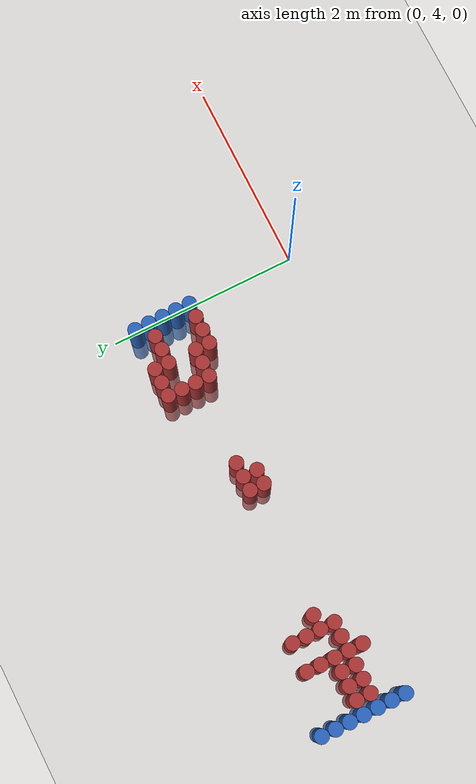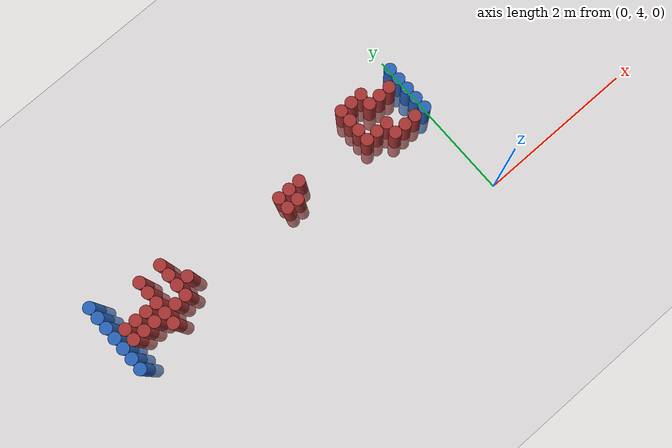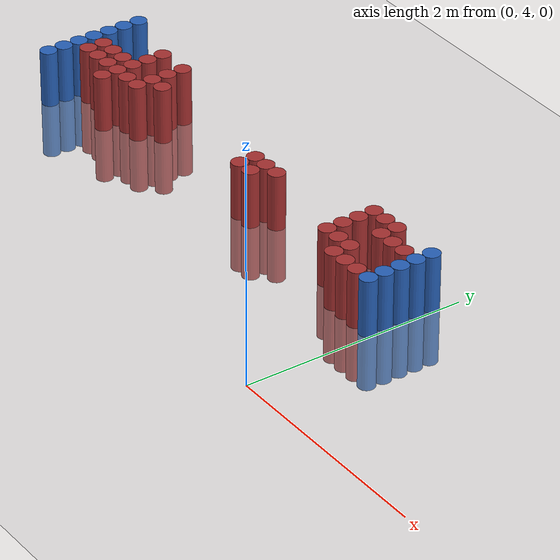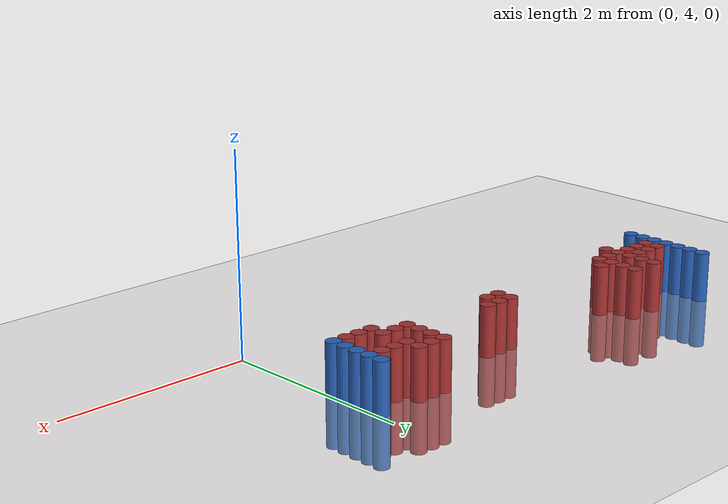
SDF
<sdf version="1.6">
 <world name="default">
  <model name="ground_plane">
   <static>1</static>
   <link name="link">
    <collision name="collision">
     <geometry><plane><normal>0 0 1</normal><size>100 100</size></plane></geometry>
     <surface><friction><ode><mu>100</mu><mu2>50</mu2></ode></friction></surface>
    </collision>
    <visual name="visual">
     <cast_shadows>0</cast_shadows>
     <geometry><plane><normal>0 0 1</normal><size>100 100</size></plane></geometry>
     <material>
      <script><uri>file://media/materials/scripts/gazebo.material</uri><name>Gazebo/Grey</name></script>
     </material>
    </visual>
   </link>
  </model>
  <model name="unit_cylinder_95">
   <static>1</static>
   <pose>-4.425000 5.025000 0.000000 0.000000 0.000000 0.000000</pose>
   <link name="link">
    <inertial>
     <mass>1</mass>
     <inertia><ixx>0.145833</ixx><ixy>0</ixy><ixz>0</ixz><iyy>0.145833</iyy><iyz>0</iyz><izz>0.125</izz></inertia>
    </inertial>
    <collision name="collision">
     <geometry><cylinder><radius>0.075000</radius><length>1</length></cylinder></geometry>
    </collision>
    <visual name="visual">
     <geometry><cylinder><radius>0.075000</radius><length>1</length></cylinder></geometry>
     <material>
      <ambient>0.152000 0.379000 0.720000 1</ambient>
      <diffuse>0.152000 0.379000 0.720000 1</diffuse>
     </material>
     <material>
      <script><name>Gazebo/Grey</name><uri>file://media/materials/scripts/gazebo.material</uri></script>
     </material>
    </visual>
   </link>
  </model>
  <model name="unit_cylinder_96">
   <static>1</static>
   <pose>-4.425000 5.175000 0.000000 0.000000 0.000000 0.000000</pose>
   <link name="link">
    <inertial>
     <mass>1</mass>
     <inertia><ixx>0.145833</ixx><ixy>0</ixy><ixz>0</ixz><iyy>0.145833</iyy><iyz>0</iyz><izz>0.125</izz></inertia>
    </inertial>
    <collision name="collision">
     <geometry><cylinder><radius>0.075000</radius><length>1</length></cylinder></geometry>
    </collision>
    <visual name="visual">
     <geometry><cylinder><radius>0.075000</radius><length>1</length></cylinder></geometry>
     <material>
      <ambient>0.152000 0.379000 0.720000 1</ambient>
      <diffuse>0.152000 0.379000 0.720000 1</diffuse>
     </material>
     <material>
      <script><name>Gazebo/Grey</name><uri>file://media/materials/scripts/gazebo.material</uri></script>
     </material>
    </visual>
   </link>
  </model>
  <model name="unit_cylinder_97">
   <static>1</static>
   <pose>-4.425000 5.325000 0.000000 0.000000 0.000000 0.000000</pose>
   <link name="link">
    <inertial>
     <mass>1</mass>
     <inertia><ixx>0.145833</ixx><ixy>0</ixy><ixz>0</ixz><iyy>0.145833</iyy><iyz>0</iyz><izz>0.125</izz></inertia>
    </inertial>
    <collision name="collision">
     <geometry><cylinder><radius>0.075000</radius><length>1</length></cylinder></geometry>
    </collision>
    <visual name="visual">
     <geometry><cylinder><radius>0.075000</radius><length>1</length></cylinder></geometry>
     <material>
      <ambient>0.152000 0.379000 0.720000 1</ambient>
      <diffuse>0.152000 0.379000 0.720000 1</diffuse>
     </material>
     <material>
      <script><name>Gazebo/Grey</name><uri>file://media/materials/scripts/gazebo.material</uri></script>
     </material>
    </visual>
   </link>
  </model>
  <model name="unit_cylinder_98">
   <static>1</static>
   <pose>-4.425000 5.475000 0.000000 0.000000 0.000000 0.000000</pose>
   <link name="link">
    <inertial>
     <mass>1</mass>
     <inertia><ixx>0.145833</ixx><ixy>0</ixy><ixz>0</ixz><iyy>0.145833</iyy><iyz>0</iyz><izz>0.125</izz></inertia>
    </inertial>
    <collision name="collision">
     <geometry><cylinder><radius>0.075000</radius><length>1</length></cylinder></geometry>
    </collision>
    <visual name="visual">
     <geometry><cylinder><radius>0.075000</radius><length>1</length></cylinder></geometry>
     <material>
      <ambient>0.152000 0.379000 0.720000 1</ambient>
      <diffuse>0.152000 0.379000 0.720000 1</diffuse>
     </material>
     <material>
      <script><name>Gazebo/Grey</name><uri>file://media/materials/scripts/gazebo.material</uri></script>
     </material>
    </visual>
   </link>
  </model>
  <model name="unit_cylinder_99">
   <static>1</static>
   <pose>-4.425000 5.625000 0.000000 0.000000 0.000000 0.000000</pose>
   <link name="link">
    <inertial>
     <mass>1</mass>
     <inertia><ixx>0.145833</ixx><ixy>0</ixy><ixz>0</ixz><iyy>0.145833</iyy><iyz>0</iyz><izz>0.125</izz></inertia>
    </inertial>
    <collision name="collision">
     <geometry><cylinder><radius>0.075000</radius><length>1</length></cylinder></geometry>
    </collision>
    <visual name="visual">
     <geometry><cylinder><radius>0.075000</radius><length>1</length></cylinder></geometry>
     <material>
      <ambient>0.152000 0.379000 0.720000 1</ambient>
      <diffuse>0.152000 0.379000 0.720000 1</diffuse>
     </material>
     <material>
      <script><name>Gazebo/Grey</name><uri>file://media/materials/scripts/gazebo.material</uri></script>
     </material>
    </visual>
   </link>
  </model>
  <model name="unit_cylinder_100">
   <static>1</static>
   <pose>-4.425000 5.775000 0.000000 0.000000 0.000000 0.000000</pose>
   <link name="link">
    <inertial>
     <mass>1</mass>
     <inertia><ixx>0.145833</ixx><ixy>0</ixy><ixz>0</ixz><iyy>0.145833</iyy><iyz>0</iyz><izz>0.125</izz></inertia>
    </inertial>
    <collision name="collision">
     <geometry><cylinder><radius>0.075000</radius><length>1</length></cylinder></geometry>
    </collision>
    <visual name="visual">
     <geometry><cylinder><radius>0.075000</radius><length>1</length></cylinder></geometry>
     <material>
      <ambient>0.152000 0.379000 0.720000 1</ambient>
      <diffuse>0.152000 0.379000 0.720000 1</diffuse>
     </material>
     <material>
      <script><name>Gazebo/Grey</name><uri>file://media/materials/scripts/gazebo.material</uri></script>
     </material>
    </visual>
   </link>
  </model>
  <model name="unit_cylinder_101">
   <static>1</static>
   <pose>-4.425000 5.925000 0.000000 0.000000 0.000000 0.000000</pose>
   <link name="link">
    <inertial>
     <mass>1</mass>
     <inertia><ixx>0.145833</ixx><ixy>0</ixy><ixz>0</ixz><iyy>0.145833</iyy><iyz>0</iyz><izz>0.125</izz></inertia>
    </inertial>
    <collision name="collision">
     <geometry><cylinder><radius>0.075000</radius><length>1</length></cylinder></geometry>
    </collision>
    <visual name="visual">
     <geometry><cylinder><radius>0.075000</radius><length>1</length></cylinder></geometry>
     <material>
      <ambient>0.152000 0.379000 0.720000 1</ambient>
      <diffuse>0.152000 0.379000 0.720000 1</diffuse>
     </material>
     <material>
      <script><name>Gazebo/Grey</name><uri>file://media/materials/scripts/gazebo.material</uri></script>
     </material>
    </visual>
   </link>
  </model>
  <model name="unit_cylinder_126">
   <static>1</static>
   <pose>-4.275000 5.325000 0.000000 0.000000 0.000000 0.000000</pose>
   <link name="link">
    <inertial>
     <mass>1</mass>
     <inertia><ixx>0.145833</ixx><ixy>0</ixy><ixz>0</ixz><iyy>0.145833</iyy><iyz>0</iyz><izz>0.125</izz></inertia>
    </inertial>
    <collision name="collision">
     <geometry><cylinder><radius>0.075000</radius><length>1</length></cylinder></geometry>
    </collision>
    <visual name="visual">
     <geometry><cylinder><radius>0.075000</radius><length>1</length></cylinder></geometry>
     <material>
      <ambient>0.648000 0.192000 0.192000 1</ambient>
      <diffuse>0.648000 0.192000 0.192000 1</diffuse>
     </material>
     <material>
      <script><name>Gazebo/Grey</name><uri>file://media/materials/scripts/gazebo.material</uri></script>
     </material>
    </visual>
   </link>
  </model>
  <model name="unit_cylinder_127">
   <static>1</static>
   <pose>-4.275000 5.475000 0.000000 0.000000 0.000000 0.000000</pose>
   <link name="link">
    <inertial>
     <mass>1</mass>
     <inertia><ixx>0.145833</ixx><ixy>0</ixy><ixz>0</ixz><iyy>0.145833</iyy><iyz>0</iyz><izz>0.125</izz></inertia>
    </inertial>
    <collision name="collision">
     <geometry><cylinder><radius>0.075000</radius><length>1</length></cylinder></geometry>
    </collision>
    <visual name="visual">
     <geometry><cylinder><radius>0.075000</radius><length>1</length></cylinder></geometry>
     <material>
      <ambient>0.648000 0.192000 0.192000 1</ambient>
      <diffuse>0.648000 0.192000 0.192000 1</diffuse>
     </material>
     <material>
      <script><name>Gazebo/Grey</name><uri>file://media/materials/scripts/gazebo.material</uri></script>
     </material>
    </visual>
   </link>
  </model>
  <model name="unit_cylinder_141">
   <static>1</static>
   <pose>-4.125000 5.325000 0.000000 0.000000 0.000000 0.000000</pose>
   <link name="link">
    <inertial>
     <mass>1</mass>
     <inertia><ixx>0.145833</ixx><ixy>0</ixy><ixz>0</ixz><iyy>0.145833</iyy><iyz>0</iyz><izz>0.125</izz></inertia>
    </inertial>
    <collision name="collision">
     <geometry><cylinder><radius>0.075000</radius><length>1</length></cylinder></geometry>
    </collision>
    <visual name="visual">
     <geometry><cylinder><radius>0.075000</radius><length>1</length></cylinder></geometry>
     <material>
      <ambient>0.648000 0.192000 0.192000 1</ambient>
      <diffuse>0.648000 0.192000 0.192000 1</diffuse>
     </material>
     <material>
      <script><name>Gazebo/Grey</name><uri>file://media/materials/scripts/gazebo.material</uri></script>
     </material>
    </visual>
   </link>
  </model>
  <model name="unit_cylinder_142">
   <static>1</static>
   <pose>-4.125000 5.475000 0.000000 0.000000 0.000000 0.000000</pose>
   <link name="link">
    <inertial>
     <mass>1</mass>
     <inertia><ixx>0.145833</ixx><ixy>0</ixy><ixz>0</ixz><iyy>0.145833</iyy><iyz>0</iyz><izz>0.125</izz></inertia>
    </inertial>
    <collision name="collision">
     <geometry><cylinder><radius>0.075000</radius><length>1</length></cylinder></geometry>
    </collision>
    <visual name="visual">
     <geometry><cylinder><radius>0.075000</radius><length>1</length></cylinder></geometry>
     <material>
      <ambient>0.648000 0.192000 0.192000 1</ambient>
      <diffuse>0.648000 0.192000 0.192000 1</diffuse>
     </material>
     <material>
      <script><name>Gazebo/Grey</name><uri>file://media/materials/scripts/gazebo.material</uri></script>
     </material>
    </visual>
   </link>
  </model>
  <model name="unit_cylinder_152">
   <static>1</static>
   <pose>-3.975000 5.325000 0.000000 0.000000 0.000000 0.000000</pose>
   <link name="link">
    <inertial>
     <mass>1</mass>
     <inertia><ixx>0.145833</ixx><ixy>0</ixy><ixz>0</ixz><iyy>0.145833</iyy><iyz>0</iyz><izz>0.125</izz></inertia>
    </inertial>
    <collision name="collision">
     <geometry><cylinder><radius>0.075000</radius><length>1</length></cylinder></geometry>
    </collision>
    <visual name="visual">
     <geometry><cylinder><radius>0.075000</radius><length>1</length></cylinder></geometry>
     <material>
      <ambient>0.648000 0.192000 0.192000 1</ambient>
      <diffuse>0.648000 0.192000 0.192000 1</diffuse>
     </material>
     <material>
      <script><name>Gazebo/Grey</name><uri>file://media/materials/scripts/gazebo.material</uri></script>
     </material>
    </visual>
   </link>
  </model>
  <model name="unit_cylinder_153">
   <static>1</static>
   <pose>-3.975000 5.475000 0.000000 0.000000 0.000000 0.000000</pose>
   <link name="link">
    <inertial>
     <mass>1</mass>
     <inertia><ixx>0.145833</ixx><ixy>0</ixy><ixz>0</ixz><iyy>0.145833</iyy><iyz>0</iyz><izz>0.125</izz></inertia>
    </inertial>
    <collision name="collision">
     <geometry><cylinder><radius>0.075000</radius><length>1</length></cylinder></geometry>
    </collision>
    <visual name="visual">
     <geometry><cylinder><radius>0.075000</radius><length>1</length></cylinder></geometry>
     <material>
      <ambient>0.648000 0.192000 0.192000 1</ambient>
      <diffuse>0.648000 0.192000 0.192000 1</diffuse>
     </material>
     <material>
      <script><name>Gazebo/Grey</name><uri>file://media/materials/scripts/gazebo.material</uri></script>
     </material>
    </visual>
   </link>
  </model>
  <model name="unit_cylinder_160">
   <static>1</static>
   <pose>-3.825000 5.175000 0.000000 0.000000 0.000000 0.000000</pose>
   <link name="link">
    <inertial>
     <mass>1</mass>
     <inertia><ixx>0.145833</ixx><ixy>0</ixy><ixz>0</ixz><iyy>0.145833</iyy><iyz>0</iyz><izz>0.125</izz></inertia>
    </inertial>
    <collision name="collision">
     <geometry><cylinder><radius>0.075000</radius><length>1</length></cylinder></geometry>
    </collision>
    <visual name="visual">
     <geometry><cylinder><radius>0.075000</radius><length>1</length></cylinder></geometry>
     <material>
      <ambient>0.648000 0.192000 0.192000 1</ambient>
      <diffuse>0.648000 0.192000 0.192000 1</diffuse>
     </material>
     <material>
      <script><name>Gazebo/Grey</name><uri>file://media/materials/scripts/gazebo.material</uri></script>
     </material>
    </visual>
   </link>
  </model>
  <model name="unit_cylinder_161">
   <static>1</static>
   <pose>-3.825000 5.325000 0.000000 0.000000 0.000000 0.000000</pose>
   <link name="link">
    <inertial>
     <mass>1</mass>
     <inertia><ixx>0.145833</ixx><ixy>0</ixy><ixz>0</ixz><iyy>0.145833</iyy><iyz>0</iyz><izz>0.125</izz></inertia>
    </inertial>
    <collision name="collision">
     <geometry><cylinder><radius>0.075000</radius><length>1</length></cylinder></geometry>
    </collision>
    <visual name="visual">
     <geometry><cylinder><radius>0.075000</radius><length>1</length></cylinder></geometry>
     <material>
      <ambient>0.648000 0.192000 0.192000 1</ambient>
      <diffuse>0.648000 0.192000 0.192000 1</diffuse>
     </material>
     <material>
      <script><name>Gazebo/Grey</name><uri>file://media/materials/scripts/gazebo.material</uri></script>
     </material>
    </visual>
   </link>
  </model>
  <model name="unit_cylinder_162">
   <static>1</static>
   <pose>-3.825000 5.475000 0.000000 0.000000 0.000000 0.000000</pose>
   <link name="link">
    <inertial>
     <mass>1</mass>
     <inertia><ixx>0.145833</ixx><ixy>0</ixy><ixz>0</ixz><iyy>0.145833</iyy><iyz>0</iyz><izz>0.125</izz></inertia>
    </inertial>
    <collision name="collision">
     <geometry><cylinder><radius>0.075000</radius><length>1</length></cylinder></geometry>
    </collision>
    <visual name="visual">
     <geometry><cylinder><radius>0.075000</radius><length>1</length></cylinder></geometry>
     <material>
      <ambient>0.648000 0.192000 0.192000 1</ambient>
      <diffuse>0.648000 0.192000 0.192000 1</diffuse>
     </material>
     <material>
      <script><name>Gazebo/Grey</name><uri>file://media/materials/scripts/gazebo.material</uri></script>
     </material>
    </visual>
   </link>
  </model>
  <model name="unit_cylinder_163">
   <static>1</static>
   <pose>-3.825000 5.625000 0.000000 0.000000 0.000000 0.000000</pose>
   <link name="link">
    <inertial>
     <mass>1</mass>
     <inertia><ixx>0.145833</ixx><ixy>0</ixy><ixz>0</ixz><iyy>0.145833</iyy><iyz>0</iyz><izz>0.125</izz></inertia>
    </inertial>
    <collision name="collision">
     <geometry><cylinder><radius>0.075000</radius><length>1</length></cylinder></geometry>
    </collision>
    <visual name="visual">
     <geometry><cylinder><radius>0.075000</radius><length>1</length></cylinder></geometry>
     <material>
      <ambient>0.648000 0.192000 0.192000 1</ambient>
      <diffuse>0.648000 0.192000 0.192000 1</diffuse>
     </material>
     <material>
      <script><name>Gazebo/Grey</name><uri>file://media/materials/scripts/gazebo.material</uri></script>
     </material>
    </visual>
   </link>
  </model>
  <model name="unit_cylinder_164">
   <static>1</static>
   <pose>-3.825000 5.775000 0.000000 0.000000 0.000000 0.000000</pose>
   <link name="link">
    <inertial>
     <mass>1</mass>
     <inertia><ixx>0.145833</ixx><ixy>0</ixy><ixz>0</ixz><iyy>0.145833</iyy><iyz>0</iyz><izz>0.125</izz></inertia>
    </inertial>
    <collision name="collision">
     <geometry><cylinder><radius>0.075000</radius><length>1</length></cylinder></geometry>
    </collision>
    <visual name="visual">
     <geometry><cylinder><radius>0.075000</radius><length>1</length></cylinder></geometry>
     <material>
      <ambient>0.648000 0.192000 0.192000 1</ambient>
      <diffuse>0.648000 0.192000 0.192000 1</diffuse>
     </material>
     <material>
      <script><name>Gazebo/Grey</name><uri>file://media/materials/scripts/gazebo.material</uri></script>
     </material>
    </visual>
   </link>
  </model>
  <model name="unit_cylinder_172">
   <static>1</static>
   <pose>-3.675000 5.325000 0.000000 0.000000 0.000000 0.000000</pose>
   <link name="link">
    <inertial>
     <mass>1</mass>
     <inertia><ixx>0.145833</ixx><ixy>0</ixy><ixz>0</ixz><iyy>0.145833</iyy><iyz>0</iyz><izz>0.125</izz></inertia>
    </inertial>
    <collision name="collision">
     <geometry><cylinder><radius>0.075000</radius><length>1</length></cylinder></geometry>
    </collision>
    <visual name="visual">
     <geometry><cylinder><radius>0.075000</radius><length>1</length></cylinder></geometry>
     <material>
      <ambient>0.648000 0.192000 0.192000 1</ambient>
      <diffuse>0.648000 0.192000 0.192000 1</diffuse>
     </material>
     <material>
      <script><name>Gazebo/Grey</name><uri>file://media/materials/scripts/gazebo.material</uri></script>
     </material>
    </visual>
   </link>
  </model>
  <model name="unit_cylinder_175">
   <static>1</static>
   <pose>-3.525000 5.325000 0.000000 0.000000 0.000000 0.000000</pose>
   <link name="link">
    <inertial>
     <mass>1</mass>
     <inertia><ixx>0.145833</ixx><ixy>0</ixy><ixz>0</ixz><iyy>0.145833</iyy><iyz>0</iyz><izz>0.125</izz></inertia>
    </inertial>
    <collision name="collision">
     <geometry><cylinder><radius>0.075000</radius><length>1</length></cylinder></geometry>
    </collision>
    <visual name="visual">
     <geometry><cylinder><radius>0.075000</radius><length>1</length></cylinder></geometry>
     <material>
      <ambient>0.648000 0.192000 0.192000 1</ambient>
      <diffuse>0.648000 0.192000 0.192000 1</diffuse>
     </material>
     <material>
      <script><name>Gazebo/Grey</name><uri>file://media/materials/scripts/gazebo.material</uri></script>
     </material>
    </visual>
   </link>
  </model>
  <model name="unit_cylinder_176">
   <static>1</static>
   <pose>-3.525000 5.475000 0.000000 0.000000 0.000000 0.000000</pose>
   <link name="link">
    <inertial>
     <mass>1</mass>
     <inertia><ixx>0.145833</ixx><ixy>0</ixy><ixz>0</ixz><iyy>0.145833</iyy><iyz>0</iyz><izz>0.125</izz></inertia>
    </inertial>
    <collision name="collision">
     <geometry><cylinder><radius>0.075000</radius><length>1</length></cylinder></geometry>
    </collision>
    <visual name="visual">
     <geometry><cylinder><radius>0.075000</radius><length>1</length></cylinder></geometry>
     <material>
      <ambient>0.648000 0.192000 0.192000 1</ambient>
      <diffuse>0.648000 0.192000 0.192000 1</diffuse>
     </material>
     <material>
      <script><name>Gazebo/Grey</name><uri>file://media/materials/scripts/gazebo.material</uri></script>
     </material>
    </visual>
   </link>
  </model>
  <model name="unit_cylinder_177">
   <static>1</static>
   <pose>-3.525000 5.625000 0.000000 0.000000 0.000000 0.000000</pose>
   <link name="link">
    <inertial>
     <mass>1</mass>
     <inertia><ixx>0.145833</ixx><ixy>0</ixy><ixz>0</ixz><iyy>0.145833</iyy><iyz>0</iyz><izz>0.125</izz></inertia>
    </inertial>
    <collision name="collision">
     <geometry><cylinder><radius>0.075000</radius><length>1</length></cylinder></geometry>
    </collision>
    <visual name="visual">
     <geometry><cylinder><radius>0.075000</radius><length>1</length></cylinder></geometry>
     <material>
      <ambient>0.648000 0.192000 0.192000 1</ambient>
      <diffuse>0.648000 0.192000 0.192000 1</diffuse>
     </material>
     <material>
      <script><name>Gazebo/Grey</name><uri>file://media/materials/scripts/gazebo.material</uri></script>
     </material>
    </visual>
   </link>
  </model>
  <model name="unit_cylinder_178">
   <static>1</static>
   <pose>-3.525000 5.775000 0.000000 0.000000 0.000000 0.000000</pose>
   <link name="link">
    <inertial>
     <mass>1</mass>
     <inertia><ixx>0.145833</ixx><ixy>0</ixy><ixz>0</ixz><iyy>0.145833</iyy><iyz>0</iyz><izz>0.125</izz></inertia>
    </inertial>
    <collision name="collision">
     <geometry><cylinder><radius>0.075000</radius><length>1</length></cylinder></geometry>
    </collision>
    <visual name="visual">
     <geometry><cylinder><radius>0.075000</radius><length>1</length></cylinder></geometry>
     <material>
      <ambient>0.648000 0.192000 0.192000 1</ambient>
      <diffuse>0.648000 0.192000 0.192000 1</diffuse>
     </material>
     <material>
      <script><name>Gazebo/Grey</name><uri>file://media/materials/scripts/gazebo.material</uri></script>
     </material>
    </visual>
   </link>
  </model>
  <model name="unit_cylinder_183">
   <static>1</static>
   <pose>-3.375000 5.475000 0.000000 0.000000 0.000000 0.000000</pose>
   <link name="link">
    <inertial>
     <mass>1</mass>
     <inertia><ixx>0.145833</ixx><ixy>0</ixy><ixz>0</ixz><iyy>0.145833</iyy><iyz>0</iyz><izz>0.125</izz></inertia>
    </inertial>
    <collision name="collision">
     <geometry><cylinder><radius>0.075000</radius><length>1</length></cylinder></geometry>
    </collision>
    <visual name="visual">
     <geometry><cylinder><radius>0.075000</radius><length>1</length></cylinder></geometry>
     <material>
      <ambient>0.648000 0.192000 0.192000 1</ambient>
      <diffuse>0.648000 0.192000 0.192000 1</diffuse>
     </material>
     <material>
      <script><name>Gazebo/Grey</name><uri>file://media/materials/scripts/gazebo.material</uri></script>
     </material>
    </visual>
   </link>
  </model>
  <model name="unit_cylinder_203">
   <static>1</static>
   <pose>-2.025000 5.325000 0.000000 0.000000 0.000000 0.000000</pose>
   <link name="link">
    <inertial>
     <mass>1</mass>
     <inertia><ixx>0.145833</ixx><ixy>0</ixy><ixz>0</ixz><iyy>0.145833</iyy><iyz>0</iyz><izz>0.125</izz></inertia>
    </inertial>
    <collision name="collision">
     <geometry><cylinder><radius>0.075000</radius><length>1</length></cylinder></geometry>
    </collision>
    <visual name="visual">
     <geometry><cylinder><radius>0.075000</radius><length>1</length></cylinder></geometry>
     <material>
      <ambient>0.648000 0.192000 0.192000 1</ambient>
      <diffuse>0.648000 0.192000 0.192000 1</diffuse>
     </material>
     <material>
      <script><name>Gazebo/Grey</name><uri>file://media/materials/scripts/gazebo.material</uri></script>
     </material>
    </visual>
   </link>
  </model>
  <model name="unit_cylinder_204">
   <static>1</static>
   <pose>-2.025000 5.475000 0.000000 0.000000 0.000000 0.000000</pose>
   <link name="link">
    <inertial>
     <mass>1</mass>
     <inertia><ixx>0.145833</ixx><ixy>0</ixy><ixz>0</ixz><iyy>0.145833</iyy><iyz>0</iyz><izz>0.125</izz></inertia>
    </inertial>
    <collision name="collision">
     <geometry><cylinder><radius>0.075000</radius><length>1</length></cylinder></geometry>
    </collision>
    <visual name="visual">
     <geometry><cylinder><radius>0.075000</radius><length>1</length></cylinder></geometry>
     <material>
      <ambient>0.648000 0.192000 0.192000 1</ambient>
      <diffuse>0.648000 0.192000 0.192000 1</diffuse>
     </material>
     <material>
      <script><name>Gazebo/Grey</name><uri>file://media/materials/scripts/gazebo.material</uri></script>
     </material>
    </visual>
   </link>
  </model>
  <model name="unit_cylinder_206">
   <static>1</static>
   <pose>-1.875000 5.325000 0.000000 0.000000 0.000000 0.000000</pose>
   <link name="link">
    <inertial>
     <mass>1</mass>
     <inertia><ixx>0.145833</ixx><ixy>0</ixy><ixz>0</ixz><iyy>0.145833</iyy><iyz>0</iyz><izz>0.125</izz></inertia>
    </inertial>
    <collision name="collision">
     <geometry><cylinder><radius>0.075000</radius><length>1</length></cylinder></geometry>
    </collision>
    <visual name="visual">
     <geometry><cylinder><radius>0.075000</radius><length>1</length></cylinder></geometry>
     <material>
      <ambient>0.648000 0.192000 0.192000 1</ambient>
      <diffuse>0.648000 0.192000 0.192000 1</diffuse>
     </material>
     <material>
      <script><name>Gazebo/Grey</name><uri>file://media/materials/scripts/gazebo.material</uri></script>
     </material>
    </visual>
   </link>
  </model>
  <model name="unit_cylinder_207">
   <static>1</static>
   <pose>-1.875000 5.475000 0.000000 0.000000 0.000000 0.000000</pose>
   <link name="link">
    <inertial>
     <mass>1</mass>
     <inertia><ixx>0.145833</ixx><ixy>0</ixy><ixz>0</ixz><iyy>0.145833</iyy><iyz>0</iyz><izz>0.125</izz></inertia>
    </inertial>
    <collision name="collision">
     <geometry><cylinder><radius>0.075000</radius><length>1</length></cylinder></geometry>
    </collision>
    <visual name="visual">
     <geometry><cylinder><radius>0.075000</radius><length>1</length></cylinder></geometry>
     <material>
      <ambient>0.648000 0.192000 0.192000 1</ambient>
      <diffuse>0.648000 0.192000 0.192000 1</diffuse>
     </material>
     <material>
      <script><name>Gazebo/Grey</name><uri>file://media/materials/scripts/gazebo.material</uri></script>
     </material>
    </visual>
   </link>
  </model>
  <model name="unit_cylinder_210">
   <static>1</static>
   <pose>-1.725000 5.475000 0.000000 0.000000 0.000000 0.000000</pose>
   <link name="link">
    <inertial>
     <mass>1</mass>
     <inertia><ixx>0.145833</ixx><ixy>0</ixy><ixz>0</ixz><iyy>0.145833</iyy><iyz>0</iyz><izz>0.125</izz></inertia>
    </inertial>
    <collision name="collision">
     <geometry><cylinder><radius>0.075000</radius><length>1</length></cylinder></geometry>
    </collision>
    <visual name="visual">
     <geometry><cylinder><radius>0.075000</radius><length>1</length></cylinder></geometry>
     <material>
      <ambient>0.648000 0.192000 0.192000 1</ambient>
      <diffuse>0.648000 0.192000 0.192000 1</diffuse>
     </material>
     <material>
      <script><name>Gazebo/Grey</name><uri>file://media/materials/scripts/gazebo.material</uri></script>
     </material>
    </visual>
   </link>
  </model>
  <model name="unit_cylinder_258">
   <static>1</static>
   <pose>-0.825000 5.325000 0.000000 0.000000 0.000000 0.000000</pose>
   <link name="link">
    <inertial>
     <mass>1</mass>
     <inertia><ixx>0.145833</ixx><ixy>0</ixy><ixz>0</ixz><iyy>0.145833</iyy><iyz>0</iyz><izz>0.125</izz></inertia>
    </inertial>
    <collision name="collision">
     <geometry><cylinder><radius>0.075000</radius><length>1</length></cylinder></geometry>
    </collision>
    <visual name="visual">
     <geometry><cylinder><radius>0.075000</radius><length>1</length></cylinder></geometry>
     <material>
      <ambient>0.648000 0.192000 0.192000 1</ambient>
      <diffuse>0.648000 0.192000 0.192000 1</diffuse>
     </material>
     <material>
      <script><name>Gazebo/Grey</name><uri>file://media/materials/scripts/gazebo.material</uri></script>
     </material>
    </visual>
   </link>
  </model>
  <model name="unit_cylinder_259">
   <static>1</static>
   <pose>-0.825000 5.475000 0.000000 0.000000 0.000000 0.000000</pose>
   <link name="link">
    <inertial>
     <mass>1</mass>
     <inertia><ixx>0.145833</ixx><ixy>0</ixy><ixz>0</ixz><iyy>0.145833</iyy><iyz>0</iyz><izz>0.125</izz></inertia>
    </inertial>
    <collision name="collision">
     <geometry><cylinder><radius>0.075000</radius><length>1</length></cylinder></geometry>
    </collision>
    <visual name="visual">
     <geometry><cylinder><radius>0.075000</radius><length>1</length></cylinder></geometry>
     <material>
      <ambient>0.648000 0.192000 0.192000 1</ambient>
      <diffuse>0.648000 0.192000 0.192000 1</diffuse>
     </material>
     <material>
      <script><name>Gazebo/Grey</name><uri>file://media/materials/scripts/gazebo.material</uri></script>
     </material>
    </visual>
   </link>
  </model>
  <model name="unit_cylinder_260">
   <static>1</static>
   <pose>-0.825000 5.625000 0.000000 0.000000 0.000000 0.000000</pose>
   <link name="link">
    <inertial>
     <mass>1</mass>
     <inertia><ixx>0.145833</ixx><ixy>0</ixy><ixz>0</ixz><iyy>0.145833</iyy><iyz>0</iyz><izz>0.125</izz></inertia>
    </inertial>
    <collision name="collision">
     <geometry><cylinder><radius>0.075000</radius><length>1</length></cylinder></geometry>
    </collision>
    <visual name="visual">
     <geometry><cylinder><radius>0.075000</radius><length>1</length></cylinder></geometry>
     <material>
      <ambient>0.648000 0.192000 0.192000 1</ambient>
      <diffuse>0.648000 0.192000 0.192000 1</diffuse>
     </material>
     <material>
      <script><name>Gazebo/Grey</name><uri>file://media/materials/scripts/gazebo.material</uri></script>
     </material>
    </visual>
   </link>
  </model>
  <model name="unit_cylinder_261">
   <static>1</static>
   <pose>-0.825000 5.775000 0.000000 0.000000 0.000000 0.000000</pose>
   <link name="link">
    <inertial>
     <mass>1</mass>
     <inertia><ixx>0.145833</ixx><ixy>0</ixy><ixz>0</ixz><iyy>0.145833</iyy><iyz>0</iyz><izz>0.125</izz></inertia>
    </inertial>
    <collision name="collision">
     <geometry><cylinder><radius>0.075000</radius><length>1</length></cylinder></geometry>
    </collision>
    <visual name="visual">
     <geometry><cylinder><radius>0.075000</radius><length>1</length></cylinder></geometry>
     <material>
      <ambient>0.648000 0.192000 0.192000 1</ambient>
      <diffuse>0.648000 0.192000 0.192000 1</diffuse>
     </material>
     <material>
      <script><name>Gazebo/Grey</name><uri>file://media/materials/scripts/gazebo.material</uri></script>
     </material>
    </visual>
   </link>
  </model>
  <model name="unit_cylinder_264">
   <static>1</static>
   <pose>-0.675000 5.325000 0.000000 0.000000 0.000000 0.000000</pose>
   <link name="link">
    <inertial>
     <mass>1</mass>
     <inertia><ixx>0.145833</ixx><ixy>0</ixy><ixz>0</ixz><iyy>0.145833</iyy><iyz>0</iyz><izz>0.125</izz></inertia>
    </inertial>
    <collision name="collision">
     <geometry><cylinder><radius>0.075000</radius><length>1</length></cylinder></geometry>
    </collision>
    <visual name="visual">
     <geometry><cylinder><radius>0.075000</radius><length>1</length></cylinder></geometry>
     <material>
      <ambient>0.648000 0.192000 0.192000 1</ambient>
      <diffuse>0.648000 0.192000 0.192000 1</diffuse>
     </material>
     <material>
      <script><name>Gazebo/Grey</name><uri>file://media/materials/scripts/gazebo.material</uri></script>
     </material>
    </visual>
   </link>
  </model>
  <model name="unit_cylinder_265">
   <static>1</static>
   <pose>-0.675000 5.775000 0.000000 0.000000 0.000000 0.000000</pose>
   <link name="link">
    <inertial>
     <mass>1</mass>
     <inertia><ixx>0.145833</ixx><ixy>0</ixy><ixz>0</ixz><iyy>0.145833</iyy><iyz>0</iyz><izz>0.125</izz></inertia>
    </inertial>
    <collision name="collision">
     <geometry><cylinder><radius>0.075000</radius><length>1</length></cylinder></geometry>
    </collision>
    <visual name="visual">
     <geometry><cylinder><radius>0.075000</radius><length>1</length></cylinder></geometry>
     <material>
      <ambient>0.648000 0.192000 0.192000 1</ambient>
      <diffuse>0.648000 0.192000 0.192000 1</diffuse>
     </material>
     <material>
      <script><name>Gazebo/Grey</name><uri>file://media/materials/scripts/gazebo.material</uri></script>
     </material>
    </visual>
   </link>
  </model>
  <model name="unit_cylinder_268">
   <static>1</static>
   <pose>-0.525000 5.175000 0.000000 0.000000 0.000000 0.000000</pose>
   <link name="link">
    <inertial>
     <mass>1</mass>
     <inertia><ixx>0.145833</ixx><ixy>0</ixy><ixz>0</ixz><iyy>0.145833</iyy><iyz>0</iyz><izz>0.125</izz></inertia>
    </inertial>
    <collision name="collision">
     <geometry><cylinder><radius>0.075000</radius><length>1</length></cylinder></geometry>
    </collision>
    <visual name="visual">
     <geometry><cylinder><radius>0.075000</radius><length>1</length></cylinder></geometry>
     <material>
      <ambient>0.648000 0.192000 0.192000 1</ambient>
      <diffuse>0.648000 0.192000 0.192000 1</diffuse>
     </material>
     <material>
      <script><name>Gazebo/Grey</name><uri>file://media/materials/scripts/gazebo.material</uri></script>
     </material>
    </visual>
   </link>
  </model>
  <model name="unit_cylinder_269">
   <static>1</static>
   <pose>-0.525000 5.325000 0.000000 0.000000 0.000000 0.000000</pose>
   <link name="link">
    <inertial>
     <mass>1</mass>
     <inertia><ixx>0.145833</ixx><ixy>0</ixy><ixz>0</ixz><iyy>0.145833</iyy><iyz>0</iyz><izz>0.125</izz></inertia>
    </inertial>
    <collision name="collision">
     <geometry><cylinder><radius>0.075000</radius><length>1</length></cylinder></geometry>
    </collision>
    <visual name="visual">
     <geometry><cylinder><radius>0.075000</radius><length>1</length></cylinder></geometry>
     <material>
      <ambient>0.648000 0.192000 0.192000 1</ambient>
      <diffuse>0.648000 0.192000 0.192000 1</diffuse>
     </material>
     <material>
      <script><name>Gazebo/Grey</name><uri>file://media/materials/scripts/gazebo.material</uri></script>
     </material>
    </visual>
   </link>
  </model>
  <model name="unit_cylinder_270">
   <static>1</static>
   <pose>-0.525000 5.625000 0.000000 0.000000 0.000000 0.000000</pose>
   <link name="link">
    <inertial>
     <mass>1</mass>
     <inertia><ixx>0.145833</ixx><ixy>0</ixy><ixz>0</ixz><iyy>0.145833</iyy><iyz>0</iyz><izz>0.125</izz></inertia>
    </inertial>
    <collision name="collision">
     <geometry><cylinder><radius>0.075000</radius><length>1</length></cylinder></geometry>
    </collision>
    <visual name="visual">
     <geometry><cylinder><radius>0.075000</radius><length>1</length></cylinder></geometry>
     <material>
      <ambient>0.648000 0.192000 0.192000 1</ambient>
      <diffuse>0.648000 0.192000 0.192000 1</diffuse>
     </material>
     <material>
      <script><name>Gazebo/Grey</name><uri>file://media/materials/scripts/gazebo.material</uri></script>
     </material>
    </visual>
   </link>
  </model>
  <model name="unit_cylinder_271">
   <static>1</static>
   <pose>-0.525000 5.775000 0.000000 0.000000 0.000000 0.000000</pose>
   <link name="link">
    <inertial>
     <mass>1</mass>
     <inertia><ixx>0.145833</ixx><ixy>0</ixy><ixz>0</ixz><iyy>0.145833</iyy><iyz>0</iyz><izz>0.125</izz></inertia>
    </inertial>
    <collision name="collision">
     <geometry><cylinder><radius>0.075000</radius><length>1</length></cylinder></geometry>
    </collision>
    <visual name="visual">
     <geometry><cylinder><radius>0.075000</radius><length>1</length></cylinder></geometry>
     <material>
      <ambient>0.648000 0.192000 0.192000 1</ambient>
      <diffuse>0.648000 0.192000 0.192000 1</diffuse>
     </material>
     <material>
      <script><name>Gazebo/Grey</name><uri>file://media/materials/scripts/gazebo.material</uri></script>
     </material>
    </visual>
   </link>
  </model>
  <model name="unit_cylinder_276">
   <static>1</static>
   <pose>-0.375000 5.175000 0.000000 0.000000 0.000000 0.000000</pose>
   <link name="link">
    <inertial>
     <mass>1</mass>
     <inertia><ixx>0.145833</ixx><ixy>0</ixy><ixz>0</ixz><iyy>0.145833</iyy><iyz>0</iyz><izz>0.125</izz></inertia>
    </inertial>
    <collision name="collision">
     <geometry><cylinder><radius>0.075000</radius><length>1</length></cylinder></geometry>
    </collision>
    <visual name="visual">
     <geometry><cylinder><radius>0.075000</radius><length>1</length></cylinder></geometry>
     <material>
      <ambient>0.648000 0.192000 0.192000 1</ambient>
      <diffuse>0.648000 0.192000 0.192000 1</diffuse>
     </material>
     <material>
      <script><name>Gazebo/Grey</name><uri>file://media/materials/scripts/gazebo.material</uri></script>
     </material>
    </visual>
   </link>
  </model>
  <model name="unit_cylinder_277">
   <static>1</static>
   <pose>-0.375000 5.625000 0.000000 0.000000 0.000000 0.000000</pose>
   <link name="link">
    <inertial>
     <mass>1</mass>
     <inertia><ixx>0.145833</ixx><ixy>0</ixy><ixz>0</ixz><iyy>0.145833</iyy><iyz>0</iyz><izz>0.125</izz></inertia>
    </inertial>
    <collision name="collision">
     <geometry><cylinder><radius>0.075000</radius><length>1</length></cylinder></geometry>
    </collision>
    <visual name="visual">
     <geometry><cylinder><radius>0.075000</radius><length>1</length></cylinder></geometry>
     <material>
      <ambient>0.648000 0.192000 0.192000 1</ambient>
      <diffuse>0.648000 0.192000 0.192000 1</diffuse>
     </material>
     <material>
      <script><name>Gazebo/Grey</name><uri>file://media/materials/scripts/gazebo.material</uri></script>
     </material>
    </visual>
   </link>
  </model>
  <model name="unit_cylinder_285">
   <static>1</static>
   <pose>-0.225000 5.175000 0.000000 0.000000 0.000000 0.000000</pose>
   <link name="link">
    <inertial>
     <mass>1</mass>
     <inertia><ixx>0.145833</ixx><ixy>0</ixy><ixz>0</ixz><iyy>0.145833</iyy><iyz>0</iyz><izz>0.125</izz></inertia>
    </inertial>
    <collision name="collision">
     <geometry><cylinder><radius>0.075000</radius><length>1</length></cylinder></geometry>
    </collision>
    <visual name="visual">
     <geometry><cylinder><radius>0.075000</radius><length>1</length></cylinder></geometry>
     <material>
      <ambient>0.648000 0.192000 0.192000 1</ambient>
      <diffuse>0.648000 0.192000 0.192000 1</diffuse>
     </material>
     <material>
      <script><name>Gazebo/Grey</name><uri>file://media/materials/scripts/gazebo.material</uri></script>
     </material>
    </visual>
   </link>
  </model>
  <model name="unit_cylinder_286">
   <static>1</static>
   <pose>-0.225000 5.625000 0.000000 0.000000 0.000000 0.000000</pose>
   <link name="link">
    <inertial>
     <mass>1</mass>
     <inertia><ixx>0.145833</ixx><ixy>0</ixy><ixz>0</ixz><iyy>0.145833</iyy><iyz>0</iyz><izz>0.125</izz></inertia>
    </inertial>
    <collision name="collision">
     <geometry><cylinder><radius>0.075000</radius><length>1</length></cylinder></geometry>
    </collision>
    <visual name="visual">
     <geometry><cylinder><radius>0.075000</radius><length>1</length></cylinder></geometry>
     <material>
      <ambient>0.648000 0.192000 0.192000 1</ambient>
      <diffuse>0.648000 0.192000 0.192000 1</diffuse>
     </material>
     <material>
      <script><name>Gazebo/Grey</name><uri>file://media/materials/scripts/gazebo.material</uri></script>
     </material>
    </visual>
   </link>
  </model>
  <model name="unit_cylinder_305">
   <static>1</static>
   <pose>-0.075000 5.175000 0.000000 0.000000 0.000000 0.000000</pose>
   <link name="link">
    <inertial>
     <mass>1</mass>
     <inertia><ixx>0.145833</ixx><ixy>0</ixy><ixz>0</ixz><iyy>0.145833</iyy><iyz>0</iyz><izz>0.125</izz></inertia>
    </inertial>
    <collision name="collision">
     <geometry><cylinder><radius>0.075000</radius><length>1</length></cylinder></geometry>
    </collision>
    <visual name="visual">
     <geometry><cylinder><radius>0.075000</radius><length>1</length></cylinder></geometry>
     <material>
      <ambient>0.152000 0.379000 0.720000 1</ambient>
      <diffuse>0.152000 0.379000 0.720000 1</diffuse>
     </material>
     <material>
      <script><name>Gazebo/Grey</name><uri>file://media/materials/scripts/gazebo.material</uri></script>
     </material>
    </visual>
   </link>
  </model>
  <model name="unit_cylinder_306">
   <static>1</static>
   <pose>-0.075000 5.325000 0.000000 0.000000 0.000000 0.000000</pose>
   <link name="link">
    <inertial>
     <mass>1</mass>
     <inertia><ixx>0.145833</ixx><ixy>0</ixy><ixz>0</ixz><iyy>0.145833</iyy><iyz>0</iyz><izz>0.125</izz></inertia>
    </inertial>
    <collision name="collision">
     <geometry><cylinder><radius>0.075000</radius><length>1</length></cylinder></geometry>
    </collision>
    <visual name="visual">
     <geometry><cylinder><radius>0.075000</radius><length>1</length></cylinder></geometry>
     <material>
      <ambient>0.152000 0.379000 0.720000 1</ambient>
      <diffuse>0.152000 0.379000 0.720000 1</diffuse>
     </material>
     <material>
      <script><name>Gazebo/Grey</name><uri>file://media/materials/scripts/gazebo.material</uri></script>
     </material>
    </visual>
   </link>
  </model>
  <model name="unit_cylinder_307">
   <static>1</static>
   <pose>-0.075000 5.475000 0.000000 0.000000 0.000000 0.000000</pose>
   <link name="link">
    <inertial>
     <mass>1</mass>
     <inertia><ixx>0.145833</ixx><ixy>0</ixy><ixz>0</ixz><iyy>0.145833</iyy><iyz>0</iyz><izz>0.125</izz></inertia>
    </inertial>
    <collision name="collision">
     <geometry><cylinder><radius>0.075000</radius><length>1</length></cylinder></geometry>
    </collision>
    <visual name="visual">
     <geometry><cylinder><radius>0.075000</radius><length>1</length></cylinder></geometry>
     <material>
      <ambient>0.152000 0.379000 0.720000 1</ambient>
      <diffuse>0.152000 0.379000 0.720000 1</diffuse>
     </material>
     <material>
      <script><name>Gazebo/Grey</name><uri>file://media/materials/scripts/gazebo.material</uri></script>
     </material>
    </visual>
   </link>
  </model>
  <model name="unit_cylinder_308">
   <static>1</static>
   <pose>-0.075000 5.625000 0.000000 0.000000 0.000000 0.000000</pose>
   <link name="link">
    <inertial>
     <mass>1</mass>
     <inertia><ixx>0.145833</ixx><ixy>0</ixy><ixz>0</ixz><iyy>0.145833</iyy><iyz>0</iyz><izz>0.125</izz></inertia>
    </inertial>
    <collision name="collision">
     <geometry><cylinder><radius>0.075000</radius><length>1</length></cylinder></geometry>
    </collision>
    <visual name="visual">
     <geometry><cylinder><radius>0.075000</radius><length>1</length></cylinder></geometry>
     <material>
      <ambient>0.152000 0.379000 0.720000 1</ambient>
      <diffuse>0.152000 0.379000 0.720000 1</diffuse>
     </material>
     <material>
      <script><name>Gazebo/Grey</name><uri>file://media/materials/scripts/gazebo.material</uri></script>
     </material>
    </visual>
   </link>
  </model>
  <model name="unit_cylinder_309">
   <static>1</static>
   <pose>-0.075000 5.775000 0.000000 0.000000 0.000000 0.000000</pose>
   <link name="link">
    <inertial>
     <mass>1</mass>
     <inertia><ixx>0.145833</ixx><ixy>0</ixy><ixz>0</ixz><iyy>0.145833</iyy><iyz>0</iyz><izz>0.125</izz></inertia>
    </inertial>
    <collision name="collision">
     <geometry><cylinder><radius>0.075000</radius><length>1</length></cylinder></geometry>
    </collision>
    <visual name="visual">
     <geometry><cylinder><radius>0.075000</radius><length>1</length></cylinder></geometry>
     <material>
      <ambient>0.152000 0.379000 0.720000 1</ambient>
      <diffuse>0.152000 0.379000 0.720000 1</diffuse>
     </material>
     <material>
      <script><name>Gazebo/Grey</name><uri>file://media/materials/scripts/gazebo.material</uri></script>
     </material>
    </visual>
   </link>
  </model>
 </world>
</sdf>
